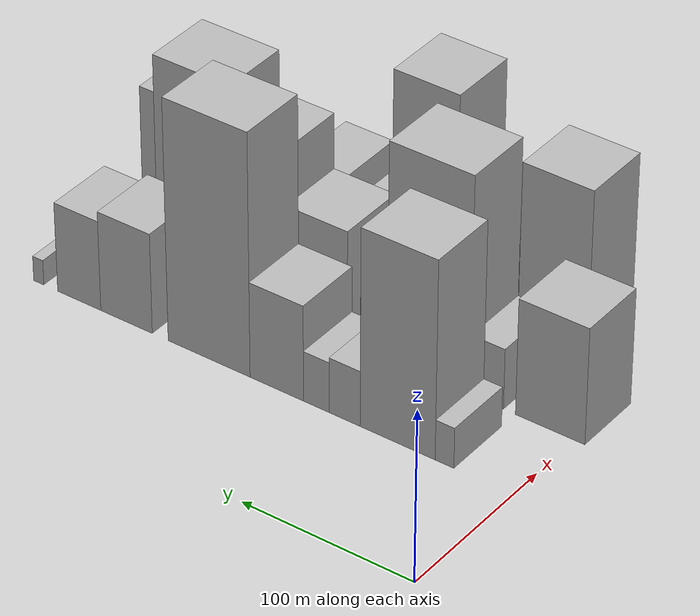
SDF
<sdf version="1.6">
 <world name="default">
  <model name="building_19">
   <static>1</static>
   <pose>100.0000 39.5540 0 0.000000 0.000000 0.000000</pose>
   <link name="link">
    <pose>0 0 12.00 0 0 0</pose>
    <collision name="collision"><geometry><box><size>40.0000 10.8943 24.0000</size></box></geometry></collision>
    <visual name="visual">
     <cast_shadows>0</cast_shadows>
     <geometry><box><size>40.0000 10.8943 24.0000</size></box></geometry>
     <material>
      <script>
       <uri>model://HANNAS_wall/materials/scripts</uri>
       <uri>model://HANNAS_wall/materials/textures</uri>
       <name>vrc/HANNAS_wall</name>
      </script>
     </material>
    </visual>
   </link>
  </model>
  <model name="building_20">
   <static>1</static>
   <pose>100.0000 67.0871 0 0.000000 0.000000 0.000000</pose>
   <link name="link">
    <pose>0 0 58.50 0 0 0</pose>
    <collision name="collision"><geometry><box><size>40.0000 44.1720 117.0000</size></box></geometry></collision>
    <visual name="visual">
     <cast_shadows>0</cast_shadows>
     <geometry><box><size>40.0000 44.1720 117.0000</size></box></geometry>
     <material>
      <script>
       <uri>model://HANNAS_wall/materials/scripts</uri>
       <uri>model://HANNAS_wall/materials/textures</uri>
       <name>vrc/HANNAS_wall</name>
      </script>
     </material>
    </visual>
   </link>
  </model>
  <model name="building_21">
   <static>1</static>
   <pose>100.0000 98.4633 0 0.000000 0.000000 0.000000</pose>
   <link name="link">
    <pose>0 0 16.50 0 0 0</pose>
    <collision name="collision"><geometry><box><size>40.0000 18.5803 33.0000</size></box></geometry></collision>
    <visual name="visual">
     <cast_shadows>0</cast_shadows>
     <geometry><box><size>40.0000 18.5803 33.0000</size></box></geometry>
     <material>
      <script>
       <uri>model://HANNAS_wall/materials/scripts</uri>
       <uri>model://HANNAS_wall/materials/textures</uri>
       <name>vrc/HANNAS_wall</name>
      </script>
     </material>
    </visual>
   </link>
  </model>
  <model name="building_22">
   <static>1</static>
   <pose>100.0000 115.4284 0 0.000000 0.000000 0.000000</pose>
   <link name="link">
    <pose>0 0 15.00 0 0 0</pose>
    <collision name="collision"><geometry><box><size>40.0000 15.3501 30.0000</size></box></geometry></collision>
    <visual name="visual">
     <cast_shadows>0</cast_shadows>
     <geometry><box><size>40.0000 15.3501 30.0000</size></box></geometry>
     <material>
      <script>
       <uri>model://HANNAS_wall/materials/scripts</uri>
       <uri>model://HANNAS_wall/materials/textures</uri>
       <name>vrc/HANNAS_wall</name>
      </script>
     </material>
    </visual>
   </link>
  </model>
  <model name="building_23">
   <static>1</static>
   <pose>100.0000 139.3123 0 0.000000 0.000000 0.000000</pose>
   <link name="link">
    <pose>0 0 28.50 0 0 0</pose>
    <collision name="collision"><geometry><box><size>40.0000 32.4177 57.0000</size></box></geometry></collision>
    <visual name="visual">
     <cast_shadows>0</cast_shadows>
     <geometry><box><size>40.0000 32.4177 57.0000</size></box></geometry>
     <material>
      <script>
       <uri>model://HANNAS_wall/materials/scripts</uri>
       <uri>model://HANNAS_wall/materials/textures</uri>
       <name>vrc/HANNAS_wall</name>
      </script>
     </material>
    </visual>
   </link>
  </model>
  <model name="building_24">
   <static>1</static>
   <pose>100.0000 180.9041 0 0.000000 0.000000 0.000000</pose>
   <link name="link">
    <pose>0 0 72.00 0 0 0</pose>
    <collision name="collision"><geometry><box><size>40.0000 50.7659 144.0000</size></box></geometry></collision>
    <visual name="visual">
     <cast_shadows>0</cast_shadows>
     <geometry><box><size>40.0000 50.7659 144.0000</size></box></geometry>
     <material>
      <script>
       <uri>model://HANNAS_wall/materials/scripts</uri>
       <uri>model://HANNAS_wall/materials/textures</uri>
       <name>vrc/HANNAS_wall</name>
      </script>
     </material>
    </visual>
   </link>
  </model>
  <model name="building_25">
   <static>1</static>
   <pose>100.0000 232.5861 0 0.000000 0.000000 0.000000</pose>
   <link name="link">
    <pose>0 0 30.00 0 0 0</pose>
    <collision name="collision"><geometry><box><size>40.0000 32.5981 60.0000</size></box></geometry></collision>
    <visual name="visual">
     <cast_shadows>0</cast_shadows>
     <geometry><box><size>40.0000 32.5981 60.0000</size></box></geometry>
     <material>
      <script>
       <uri>model://HANNAS_wall/materials/scripts</uri>
       <uri>model://HANNAS_wall/materials/textures</uri>
       <name>vrc/HANNAS_wall</name>
      </script>
     </material>
    </visual>
   </link>
  </model>
  <model name="building_26">
   <static>1</static>
   <pose>100.0000 262.7361 0 0.000000 0.000000 0.000000</pose>
   <link name="link">
    <pose>0 0 27.00 0 0 0</pose>
    <collision name="collision"><geometry><box><size>40.0000 27.7021 54.0000</size></box></geometry></collision>
    <visual name="visual">
     <cast_shadows>0</cast_shadows>
     <geometry><box><size>40.0000 27.7021 54.0000</size></box></geometry>
     <material>
      <script>
       <uri>model://HANNAS_wall/materials/scripts</uri>
       <uri>model://HANNAS_wall/materials/textures</uri>
       <name>vrc/HANNAS_wall</name>
      </script>
     </material>
    </visual>
   </link>
  </model>
  <model name="building_27">
   <static>1</static>
   <pose>100.0000 288.8583 0 0.000000 0.000000 0.000000</pose>
   <link name="link">
    <pose>0 0 7.50 0 0 0</pose>
    <collision name="collision"><geometry><box><size>40.0000 6.5422 15.0000</size></box></geometry></collision>
    <visual name="visual">
     <cast_shadows>0</cast_shadows>
     <geometry><box><size>40.0000 6.5422 15.0000</size></box></geometry>
     <material>
      <script>
       <uri>model://HANNAS_wall/materials/scripts</uri>
       <uri>model://HANNAS_wall/materials/textures</uri>
       <name>vrc/HANNAS_wall</name>
      </script>
     </material>
    </visual>
   </link>
  </model>
  <model name="building_52">
   <static>1</static>
   <pose>152.0000 14.0588 0 0.000000 0.000000 0.000000</pose>
   <link name="link">
    <pose>0 0 34.50 0 0 0</pose>
    <collision name="collision"><geometry><box><size>40.0000 40.2531 69.0000</size></box></geometry></collision>
    <visual name="visual">
     <cast_shadows>0</cast_shadows>
     <geometry><box><size>40.0000 40.2531 69.0000</size></box></geometry>
     <material>
      <script>
       <uri>model://HANNAS_wall/materials/scripts</uri>
       <uri>model://HANNAS_wall/materials/textures</uri>
       <name>vrc/HANNAS_wall</name>
      </script>
     </material>
    </visual>
   </link>
  </model>
  <model name="building_53">
   <static>1</static>
   <pose>152.0000 51.0112 0 0.000000 0.000000 0.000000</pose>
   <link name="link">
    <pose>0 0 18.00 0 0 0</pose>
    <collision name="collision"><geometry><box><size>40.0000 19.6517 36.0000</size></box></geometry></collision>
    <visual name="visual">
     <cast_shadows>0</cast_shadows>
     <geometry><box><size>40.0000 19.6517 36.0000</size></box></geometry>
     <material>
      <script>
       <uri>model://HANNAS_wall/materials/scripts</uri>
       <uri>model://HANNAS_wall/materials/textures</uri>
       <name>vrc/HANNAS_wall</name>
      </script>
     </material>
    </visual>
   </link>
  </model>
  <model name="building_54">
   <static>1</static>
   <pose>152.0000 85.5812 0 0.000000 0.000000 0.000000</pose>
   <link name="link">
    <pose>0 0 64.50 0 0 0</pose>
    <collision name="collision"><geometry><box><size>40.0000 49.4884 129.0000</size></box></geometry></collision>
    <visual name="visual">
     <cast_shadows>0</cast_shadows>
     <geometry><box><size>40.0000 49.4884 129.0000</size></box></geometry>
     <material>
      <script>
       <uri>model://HANNAS_wall/materials/scripts</uri>
       <uri>model://HANNAS_wall/materials/textures</uri>
       <name>vrc/HANNAS_wall</name>
      </script>
     </material>
    </visual>
   </link>
  </model>
  <model name="building_55">
   <static>1</static>
   <pose>152.0000 118.5009 0 0.000000 0.000000 0.000000</pose>
   <link name="link">
    <pose>0 0 15.00 0 0 0</pose>
    <collision name="collision"><geometry><box><size>40.0000 16.3510 30.0000</size></box></geometry></collision>
    <visual name="visual">
     <cast_shadows>0</cast_shadows>
     <geometry><box><size>40.0000 16.3510 30.0000</size></box></geometry>
     <material>
      <script>
       <uri>model://HANNAS_wall/materials/scripts</uri>
       <uri>model://HANNAS_wall/materials/textures</uri>
       <name>vrc/HANNAS_wall</name>
      </script>
     </material>
    </visual>
   </link>
  </model>
  <model name="building_56">
   <static>1</static>
   <pose>152.0000 153.3070 0 0.000000 0.000000 0.000000</pose>
   <link name="link">
    <pose>0 0 33.00 0 0 0</pose>
    <collision name="collision"><geometry><box><size>40.0000 37.2611 66.0000</size></box></geometry></collision>
    <visual name="visual">
     <cast_shadows>0</cast_shadows>
     <geometry><box><size>40.0000 37.2611 66.0000</size></box></geometry>
     <material>
      <script>
       <uri>model://HANNAS_wall/materials/scripts</uri>
       <uri>model://HANNAS_wall/materials/textures</uri>
       <name>vrc/HANNAS_wall</name>
      </script>
     </material>
    </visual>
   </link>
  </model>
  <model name="building_57">
   <static>1</static>
   <pose>152.0000 188.7790 0 0.000000 0.000000 0.000000</pose>
   <link name="link">
    <pose>0 0 49.50 0 0 0</pose>
    <collision name="collision"><geometry><box><size>40.0000 33.6830 99.0000</size></box></geometry></collision>
    <visual name="visual">
     <cast_shadows>0</cast_shadows>
     <geometry><box><size>40.0000 33.6830 99.0000</size></box></geometry>
     <material>
      <script>
       <uri>model://HANNAS_wall/materials/scripts</uri>
       <uri>model://HANNAS_wall/materials/textures</uri>
       <name>vrc/HANNAS_wall</name>
      </script>
     </material>
    </visual>
   </link>
  </model>
  <model name="building_58">
   <static>1</static>
   <pose>152.0000 229.4801 0 0.000000 0.000000 0.000000</pose>
   <link name="link">
    <pose>0 0 61.50 0 0 0</pose>
    <collision name="collision"><geometry><box><size>40.0000 47.7192 123.0000</size></box></geometry></collision>
    <visual name="visual">
     <cast_shadows>0</cast_shadows>
     <geometry><box><size>40.0000 47.7192 123.0000</size></box></geometry>
     <material>
      <script>
       <uri>model://HANNAS_wall/materials/scripts</uri>
       <uri>model://HANNAS_wall/materials/textures</uri>
       <name>vrc/HANNAS_wall</name>
      </script>
     </material>
    </visual>
   </link>
  </model>
  <model name="building_59">
   <static>1</static>
   <pose>152.0000 258.4215 0 0.000000 0.000000 0.000000</pose>
   <link name="link">
    <pose>0 0 12.00 0 0 0</pose>
    <collision name="collision"><geometry><box><size>40.0000 10.1636 24.0000</size></box></geometry></collision>
    <visual name="visual">
     <cast_shadows>0</cast_shadows>
     <geometry><box><size>40.0000 10.1636 24.0000</size></box></geometry>
     <material>
      <script>
       <uri>model://HANNAS_wall/materials/scripts</uri>
       <uri>model://HANNAS_wall/materials/textures</uri>
       <name>vrc/HANNAS_wall</name>
      </script>
     </material>
    </visual>
   </link>
  </model>
  <model name="building_86">
   <static>1</static>
   <pose>204.0000 47.8204 0 0.000000 0.000000 0.000000</pose>
   <link name="link">
    <pose>0 0 52.50 0 0 0</pose>
    <collision name="collision"><geometry><box><size>40.0000 41.2436 105.0000</size></box></geometry></collision>
    <visual name="visual">
     <cast_shadows>0</cast_shadows>
     <geometry><box><size>40.0000 41.2436 105.0000</size></box></geometry>
     <material>
      <script>
       <uri>model://HANNAS_wall/materials/scripts</uri>
       <uri>model://HANNAS_wall/materials/textures</uri>
       <name>vrc/HANNAS_wall</name>
      </script>
     </material>
    </visual>
   </link>
  </model>
  <model name="building_87">
   <static>1</static>
   <pose>204.0000 83.9862 0 0.000000 0.000000 0.000000</pose>
   <link name="link">
    <pose>0 0 30.00 0 0 0</pose>
    <collision name="collision"><geometry><box><size>40.0000 31.0881 60.0000</size></box></geometry></collision>
    <visual name="visual">
     <cast_shadows>0</cast_shadows>
     <geometry><box><size>40.0000 31.0881 60.0000</size></box></geometry>
     <material>
      <script>
       <uri>model://HANNAS_wall/materials/scripts</uri>
       <uri>model://HANNAS_wall/materials/textures</uri>
       <name>vrc/HANNAS_wall</name>
      </script>
     </material>
    </visual>
   </link>
  </model>
  <model name="building_88">
   <static>1</static>
   <pose>204.0000 125.2465 0 0.000000 0.000000 0.000000</pose>
   <link name="link">
    <pose>0 0 64.50 0 0 0</pose>
    <collision name="collision"><geometry><box><size>40.0000 39.4324 129.0000</size></box></geometry></collision>
    <visual name="visual">
     <cast_shadows>0</cast_shadows>
     <geometry><box><size>40.0000 39.4324 129.0000</size></box></geometry>
     <material>
      <script>
       <uri>model://HANNAS_wall/materials/scripts</uri>
       <uri>model://HANNAS_wall/materials/textures</uri>
       <name>vrc/HANNAS_wall</name>
      </script>
     </material>
    </visual>
   </link>
  </model>
  <model name="building_89">
   <static>1</static>
   <pose>204.0000 156.4666 0 0.000000 0.000000 0.000000</pose>
   <link name="link">
    <pose>0 0 21.00 0 0 0</pose>
    <collision name="collision"><geometry><box><size>40.0000 23.0079 42.0000</size></box></geometry></collision>
    <visual name="visual">
     <cast_shadows>0</cast_shadows>
     <geometry><box><size>40.0000 23.0079 42.0000</size></box></geometry>
     <material>
      <script>
       <uri>model://HANNAS_wall/materials/scripts</uri>
       <uri>model://HANNAS_wall/materials/textures</uri>
       <name>vrc/HANNAS_wall</name>
      </script>
     </material>
    </visual>
   </link>
  </model>
  <model name="building_90">
   <static>1</static>
   <pose>204.0000 187.8740 0 0.000000 0.000000 0.000000</pose>
   <link name="link">
    <pose>0 0 27.00 0 0 0</pose>
    <collision name="collision"><geometry><box><size>40.0000 29.8069 54.0000</size></box></geometry></collision>
    <visual name="visual">
     <cast_shadows>0</cast_shadows>
     <geometry><box><size>40.0000 29.8069 54.0000</size></box></geometry>
     <material>
      <script>
       <uri>model://HANNAS_wall/materials/scripts</uri>
       <uri>model://HANNAS_wall/materials/textures</uri>
       <name>vrc/HANNAS_wall</name>
      </script>
     </material>
    </visual>
   </link>
  </model>
  <model name="building_91">
   <static>1</static>
   <pose>204.0000 221.5213 0 0.000000 0.000000 0.000000</pose>
   <link name="link">
    <pose>0 0 22.50 0 0 0</pose>
    <collision name="collision"><geometry><box><size>40.0000 23.4877 45.0000</size></box></geometry></collision>
    <visual name="visual">
     <cast_shadows>0</cast_shadows>
     <geometry><box><size>40.0000 23.4877 45.0000</size></box></geometry>
     <material>
      <script>
       <uri>model://HANNAS_wall/materials/scripts</uri>
       <uri>model://HANNAS_wall/materials/textures</uri>
       <name>vrc/HANNAS_wall</name>
      </script>
     </material>
    </visual>
   </link>
  </model>
  <model name="building_92">
   <static>1</static>
   <pose>204.0000 249.6583 0 0.000000 0.000000 0.000000</pose>
   <link name="link">
    <pose>0 0 24.00 0 0 0</pose>
    <collision name="collision"><geometry><box><size>40.0000 24.7864 48.0000</size></box></geometry></collision>
    <visual name="visual">
     <cast_shadows>0</cast_shadows>
     <geometry><box><size>40.0000 24.7864 48.0000</size></box></geometry>
     <material>
      <script>
       <uri>model://HANNAS_wall/materials/scripts</uri>
       <uri>model://HANNAS_wall/materials/textures</uri>
       <name>vrc/HANNAS_wall</name>
      </script>
     </material>
    </visual>
   </link>
  </model>
  <model name="building_93">
   <static>1</static>
   <pose>204.0000 287.8796 0 0.000000 0.000000 0.000000</pose>
   <link name="link">
    <pose>0 0 28.50 0 0 0</pose>
    <collision name="collision"><geometry><box><size>40.0000 33.6562 57.0000</size></box></geometry></collision>
    <visual name="visual">
     <cast_shadows>0</cast_shadows>
     <geometry><box><size>40.0000 33.6562 57.0000</size></box></geometry>
     <material>
      <script>
       <uri>model://HANNAS_wall/materials/scripts</uri>
       <uri>model://HANNAS_wall/materials/textures</uri>
       <name>vrc/HANNAS_wall</name>
      </script>
     </material>
    </visual>
   </link>
  </model>
 </world>
</sdf>
